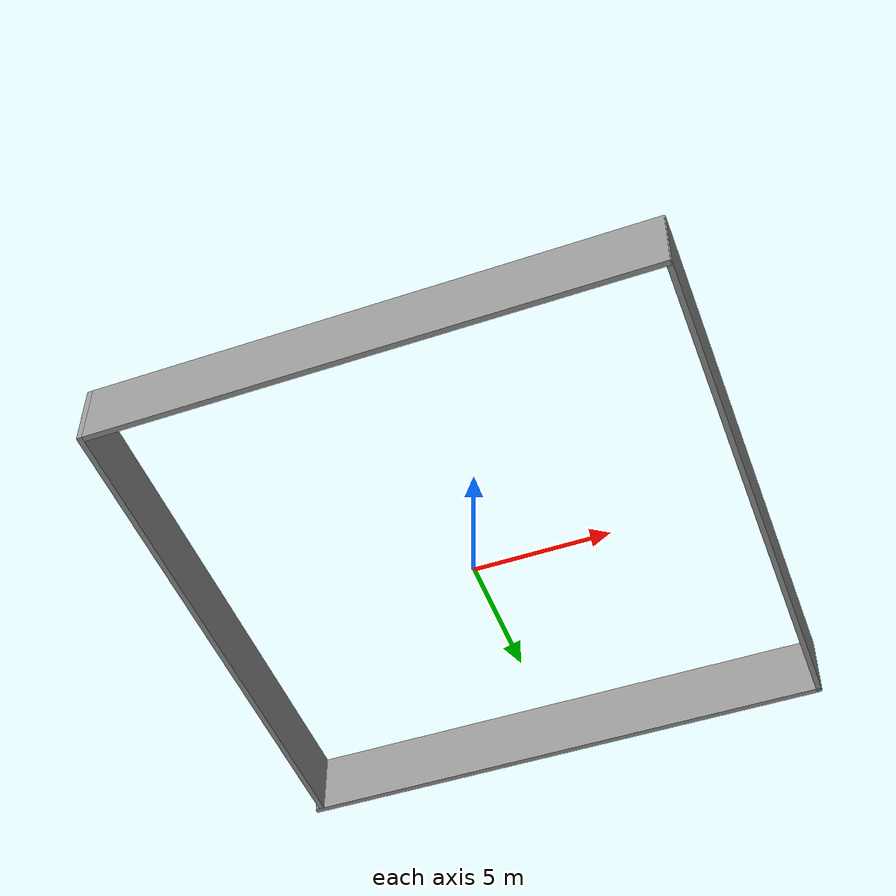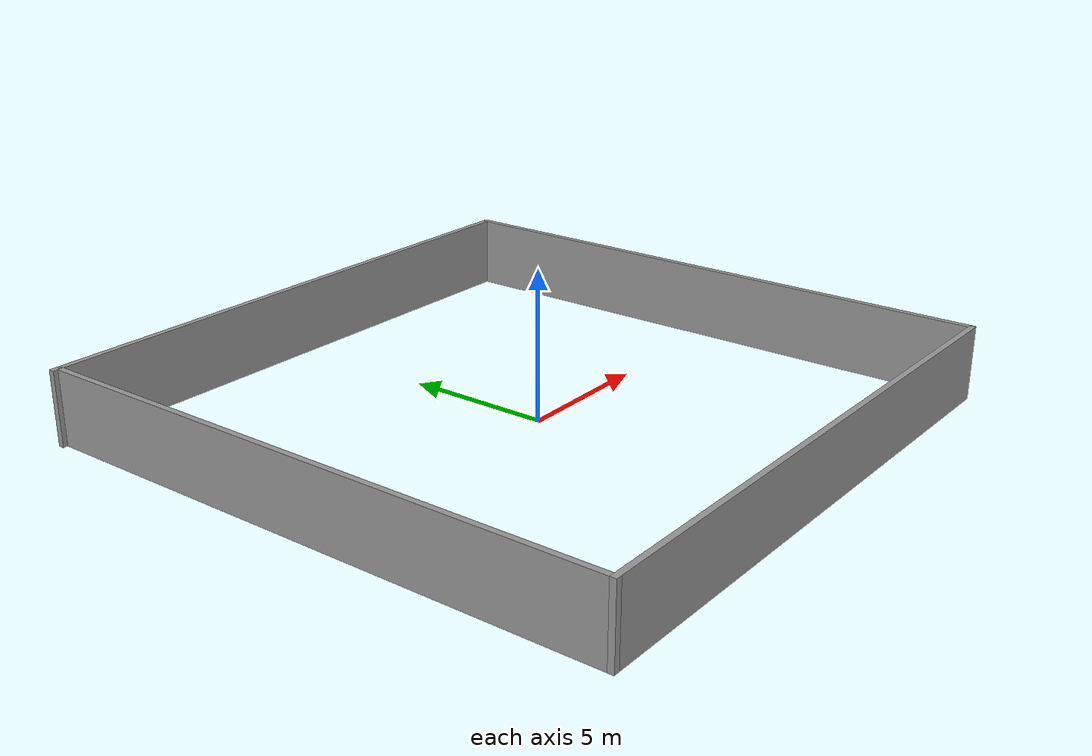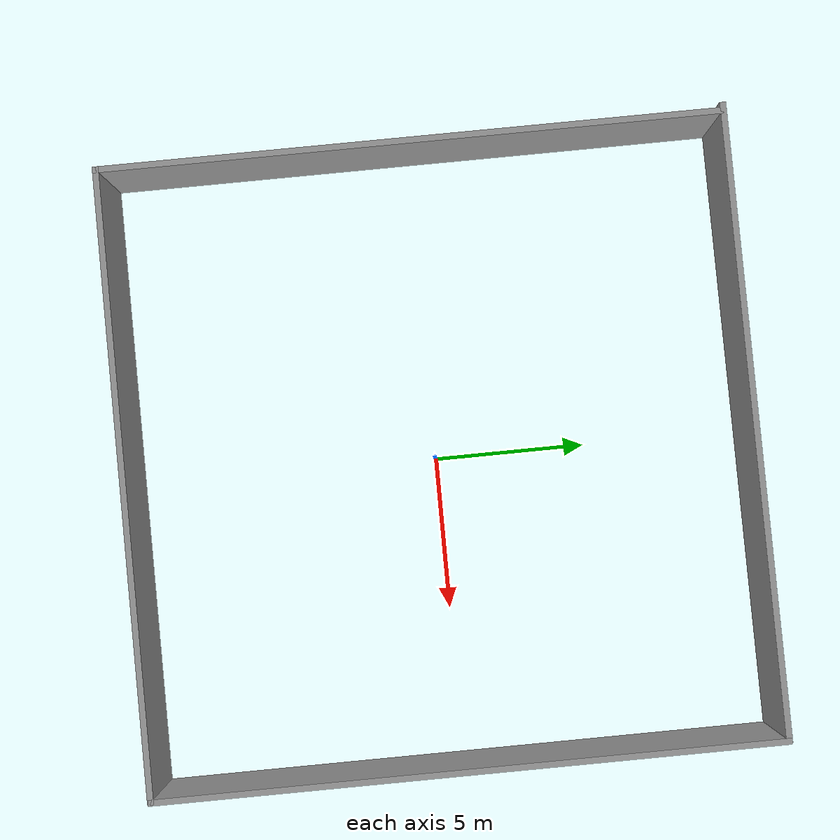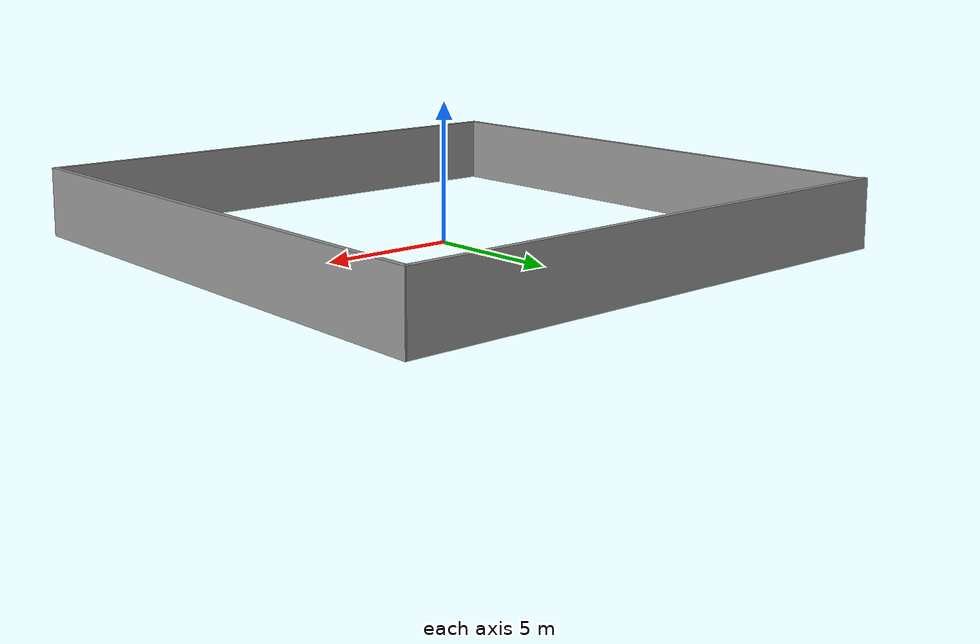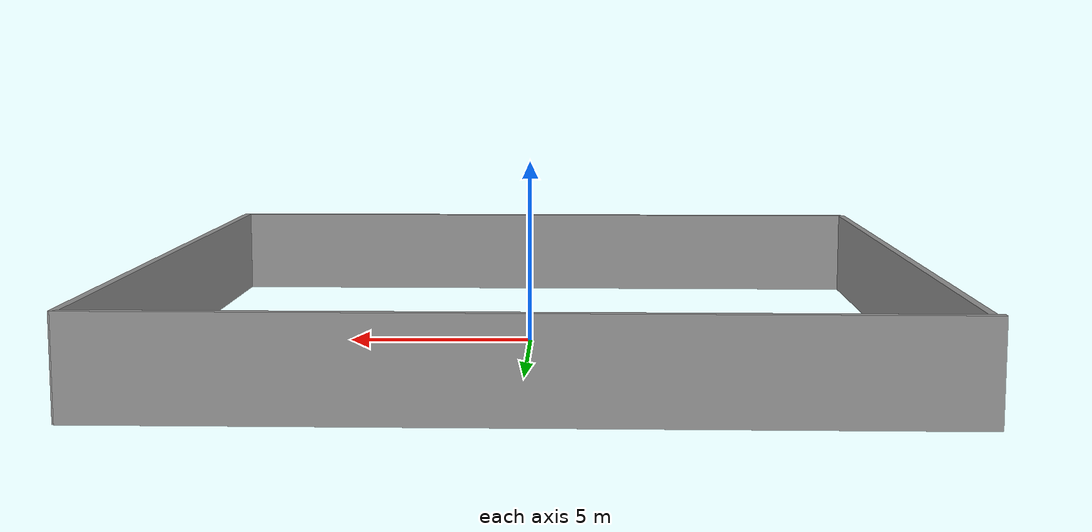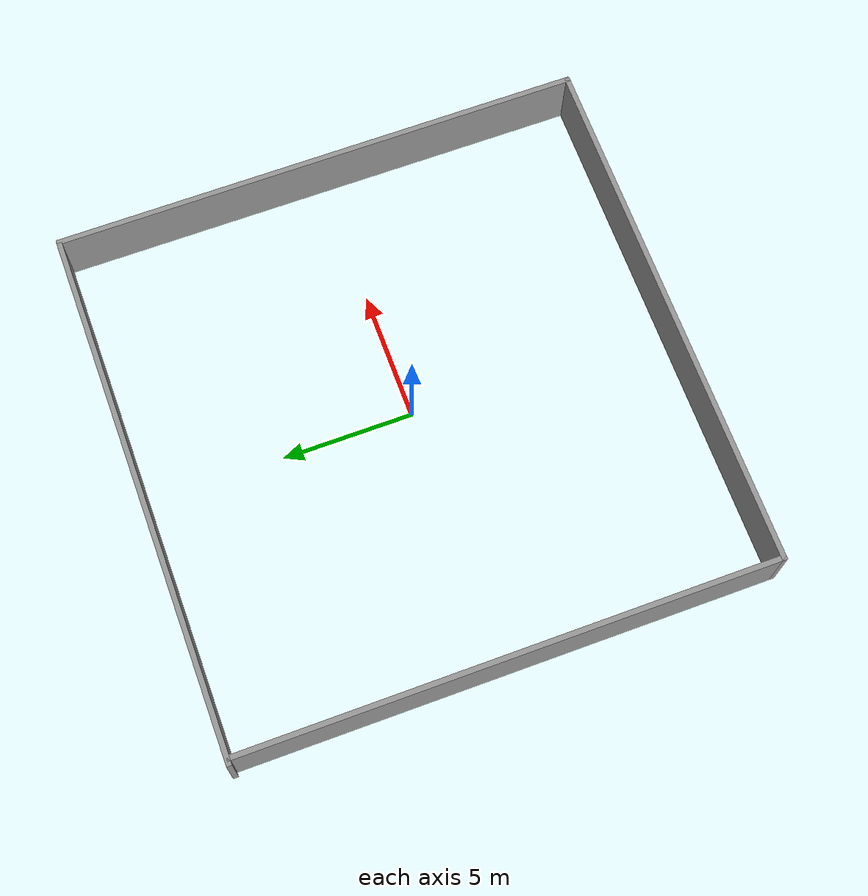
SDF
<?xml version='1.0'?>
<sdf version='1.4'>
  <model name='world'>
    <link name='Wall_0'>
      <collision name='Wall_0_Collision'>
        <geometry>
          <box>
            <size>20.2572 0.2 2.5</size>
          </box>
        </geometry>
        <pose>0 0 1.25 0 -0 0</pose>
      </collision>
      <visual name='Wall_0_Visual'>
        <pose>0 0 1.25 0 -0 0</pose>
        <geometry>
          <box>
            <size>20.2572 0.2 2.5</size>
          </box>
        </geometry>
        <material>
          <script>
            <uri>file://media/materials/scripts/gazebo.material</uri>
            <name>Gazebo/Grey</name>
          </script>
        </material>
      </visual>
      <velocity_decay>
        <linear>0</linear>
        <angular>0</angular>
      </velocity_decay>
      <pose>-0.12635 -9.92006 0 0 -0 3.14159</pose>
    </link>
    <link name='Wall_1'>
      <collision name='Wall_1_Collision'>
        <geometry>
          <box>
            <size>20.2464 0.2 2.5</size>
          </box>
        </geometry>
        <pose>0 0 1.25 0 -0 0</pose>
      </collision>
      <visual name='Wall_1_Visual'>
        <pose>0 0 1.25 0 -0 0</pose>
        <geometry>
          <box>
            <size>20.2464 0.2 2.5</size>
          </box>
        </geometry>
        <material>
          <script>
            <uri>file://media/materials/scripts/gazebo.material</uri>
            <name>Gazebo/Grey</name>
          </script>
        </material>
      </visual>
      <velocity_decay>
        <linear>0</linear>
        <angular>0</angular>
      </velocity_decay>
      <pose>-10.1549 0.103155 0 0 -0 1.5708</pose>
    </link>
    <link name='Wall_3'>
      <collision name='Wall_3_Collision'>
        <geometry>
          <box>
            <size>20.3024 0.2 2.5</size>
          </box>
        </geometry>
        <pose>0 0 1.25 0 -0 0</pose>
      </collision>
      <visual name='Wall_3_Visual'>
        <pose>0 0 1.25 0 -0 0</pose>
        <geometry>
          <box>
            <size>20.3024 0.2 2.5</size>
          </box>
        </geometry>
        <material>
          <script>
            <uri>file://media/materials/scripts/gazebo.material</uri>
            <name>Gazebo/Grey</name>
          </script>
        </material>
      </visual>
      <velocity_decay>
        <linear>0</linear>
        <angular>0</angular>
      </velocity_decay>
      <pose>9.94167 0.151756 0 0 -0 1.5708</pose>
    </link>
    <link name='Wall_5'>
      <collision name='Wall_5_Collision'>
        <geometry>
          <box>
            <size>20.4172 0.2 2.5</size>
          </box>
        </geometry>
        <pose>0 0 1.25 0 -0 0</pose>
      </collision>
      <visual name='Wall_5_Visual'>
        <pose>0 0 1.25 0 -0 0</pose>
        <geometry>
          <box>
            <size>20.4172 0.2 2.5</size>
          </box>
        </geometry>
        <material>
          <script>
            <uri>file://media/materials/scripts/gazebo.material</uri>
            <name>Gazebo/Grey</name>
          </script>
        </material>
      </visual>
      <velocity_decay>
        <linear>0</linear>
        <angular>0</angular>
      </velocity_decay>
      <pose>-0.206434 10.2151 0 0 -0 0</pose>
    </link>
    <static>1</static>
  </model>
</sdf>
